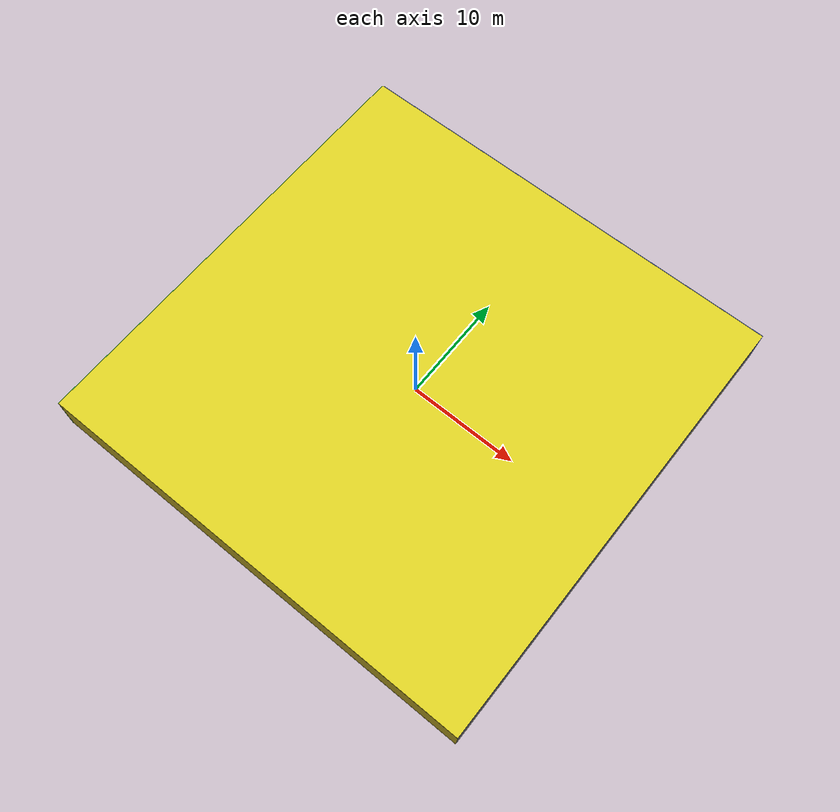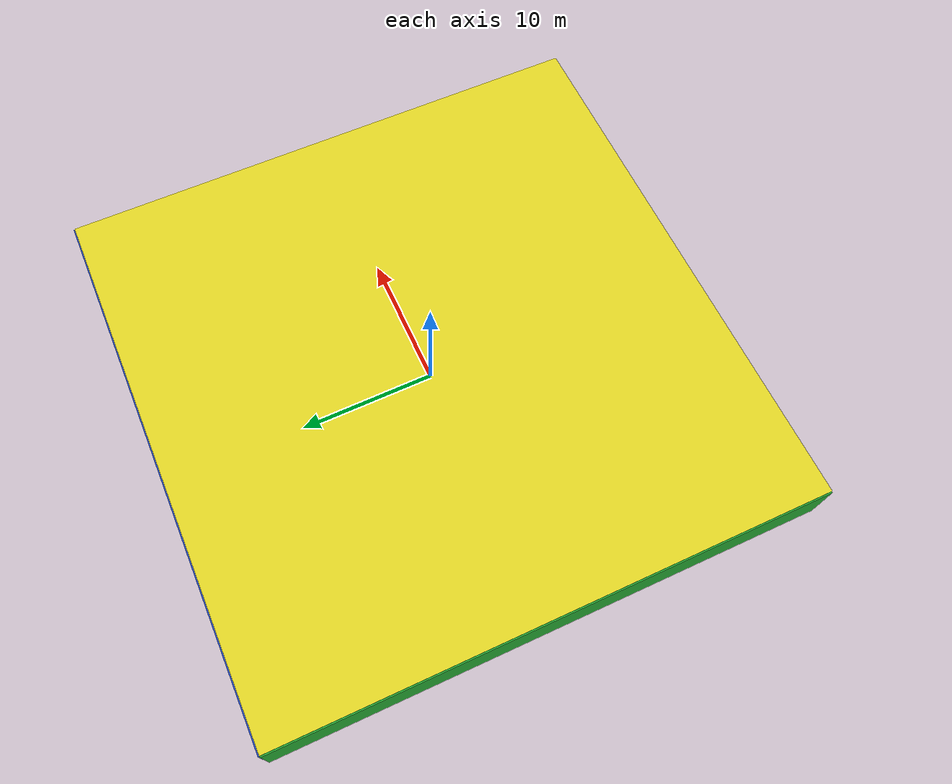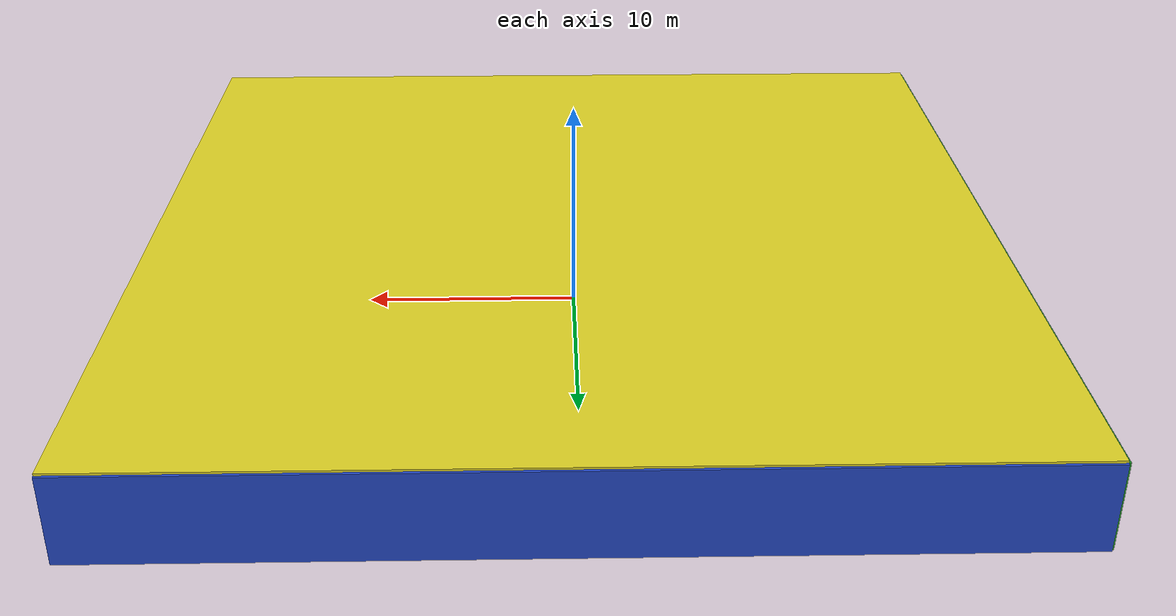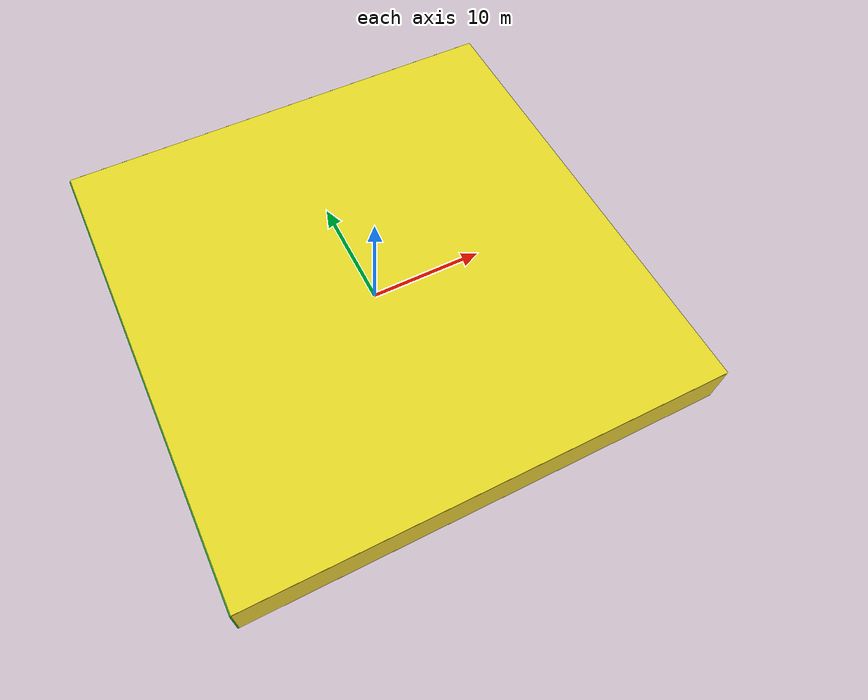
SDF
<sdf version="1.4">
 <world name="default">
  <physics type="ode">
   <max_step_size>0.001</max_step_size>
   <real_time_factor>1</real_time_factor>
   <real_time_update_rate>1000</real_time_update_rate>
   <gravity>0 0 -9.8</gravity>
  </physics>
  <scene><ambient>0.4 0.4 0.4 1</ambient><background>0.7 0.7 0.7 1</background><shadows>1</shadows></scene>
  <model name="Surrounding">
   <static>1</static>
   <link name="Ceiling">
    <collision name="Ceiling_Collision"><geometry><box><size>40 40 0.1</size></box></geometry></collision>
    <visual name="Ceiling_Visual">
     <geometry><box><size>40 40 0.1</size></box></geometry>
     <material>
      <script><uri>file://media/materials/scripts/gazebo.material</uri><name>Gazebo/YellowGlow</name></script>
     </material>
    </visual>
    <pose>0 0 4.05 0 0 0</pose>
   </link>
   <link name="Wall_South">
    <collision name="Wall_South_Collision">
     <geometry><box><size>40 0 4</size></box></geometry>
     <pose>0 0 2 0 -0 0</pose>
    </collision>
    <visual name="Wall_South_Visual">
     <pose>0 0 2 0 -0 0</pose>
     <geometry><box><size>40 0 4</size></box></geometry>
     <material>
      <script><uri>file://media/materials/scripts/gazebo.material</uri><name>Gazebo/ZincYellow</name></script>
     </material>
    </visual>
    <velocity_decay><linear>0</linear><angular>0</angular></velocity_decay>
    <pose>0 -20 0 0 -0 0</pose>
   </link>
   <link name="Wall_East">
    <collision name="Wall_21_Collision">
     <geometry><box><size>40 0 4</size></box></geometry>
     <pose>0 0 2 0 -0 0</pose>
    </collision>
    <visual name="Wall_21_Visual">
     <pose>0 0 2 0 -0 0</pose>
     <geometry><box><size>40 0 4</size></box></geometry>
     <material>
      <script><uri>file://media/materials/scripts/gazebo.material</uri><name>Gazebo/DarkGrey</name></script>
     </material>
    </visual>
    <velocity_decay><linear>0</linear><angular>0</angular></velocity_decay>
    <pose>20 0 0 0 -0 1.5708</pose>
   </link>
   <link name="Wall_North">
    <collision name="Wall_22_Collision">
     <geometry><box><size>40 0.2 4</size></box></geometry>
     <pose>0 0 2 0 -0 0</pose>
    </collision>
    <visual name="Wall_22_Visual">
     <pose>0 0 2 0 -0 0</pose>
     <geometry><box><size>40 0.2 4</size></box></geometry>
     <material>
      <script><uri>file://media/materials/scripts/gazebo.material</uri><name>Gazebo/BlueGlow</name></script>
     </material>
    </visual>
    <velocity_decay><linear>0</linear><angular>0</angular></velocity_decay>
    <pose>0 20 0 0 -0 0</pose>
   </link>
   <link name="Wall_West">
    <collision name="Wall_23_Collision">
     <geometry><box><size>40 0.2 4</size></box></geometry>
     <pose>0 0 2 0 -0 0</pose>
    </collision>
    <visual name="Wall_23_Visual">
     <pose>0 0 2 0 -0 0</pose>
     <geometry><box><size>40 0.2 4</size></box></geometry>
     <material>
      <script><uri>file://media/materials/scripts/gazebo.material</uri><name>Gazebo/GreenGlow</name></script>
     </material>
    </visual>
    <velocity_decay><linear>0</linear><angular>0</angular></velocity_decay>
    <pose>-20 0 0 0 0 -1.5708</pose>
   </link>
   <link name="Ground_link">
    <collision name="collision">
     <pose>0 0 .05 0 -0 0</pose>
     <geometry><box><size>40 40 0.1</size></box></geometry>
    </collision>
    <visual name="visual">
     <pose>0 0 .05 0 -0 0</pose>
     <geometry><box><size>40 40 0.1</size></box></geometry>
     <material>
      <script><uri>file://media/materials/scripts/gazebo.material</uri><name>Gazebo/YellowGlow</name></script>
     </material>
    </visual>
   </link>
   <static>1</static>
  </model>
  <spherical_coordinates>
   <surface_model>EARTH_WGS84</surface_model>
   <latitude_deg>0</latitude_deg>
   <longitude_deg>0</longitude_deg>
   <elevation>0</elevation>
   <heading_deg>0</heading_deg>
  </spherical_coordinates>
  <light name="lightball_0" type="diffuse">
   <diffuse>0.8 0.8 0.8 1</diffuse>
   <specular>0.2 0.2 0.2 1</specular>
   <attenuation>
    <range>100</range>
    <constant>0.7</constant>
    <linear>0.01</linear>
    <quadratic>0.001</quadratic>
   </attenuation>
   <direction>-0.5 0.1 -0.9</direction>
   <pose>12.1476703583 14.4825666915 1.30379471466 0 0 0</pose>
  </light>
  <light name="lightball_1" type="diffuse">
   <diffuse>0.8 0.8 0.8 1</diffuse>
   <specular>0.2 0.2 0.2 1</specular>
   <attenuation>
    <range>100</range>
    <constant>0.7</constant>
    <linear>0.01</linear>
    <quadratic>0.001</quadratic>
   </attenuation>
   <direction>-0.5 0.1 -0.9</direction>
   <pose>3.21428417011 -12.9584646202 3.38677828733 0 0 0</pose>
  </light>
  <light name="lightball_2" type="diffuse">
   <diffuse>0.8 0.8 0.8 1</diffuse>
   <specular>0.2 0.2 0.2 1</specular>
   <attenuation>
    <range>100</range>
    <constant>0.7</constant>
    <linear>0.01</linear>
    <quadratic>0.001</quadratic>
   </attenuation>
   <direction>-0.5 0.1 -0.9</direction>
   <pose>12.3342911174 -4.54670708271 3.7546564722 0 0 0</pose>
  </light>
  <light name="lightball_3" type="diffuse">
   <diffuse>0.8 0.8 0.8 1</diffuse>
   <specular>0.2 0.2 0.2 1</specular>
   <attenuation>
    <range>100</range>
    <constant>0.7</constant>
    <linear>0.01</linear>
    <quadratic>0.001</quadratic>
   </attenuation>
   <direction>-0.5 0.1 -0.9</direction>
   <pose>-16.5982507927 -12.5573444893 1.79399512181 0 0 0</pose>
  </light>
  <include>
   <uri>model://robocup_3Dsim_goal</uri>
   <pose>-18.3051609214 -15.436518607 0 0 0 0.765119504532</pose>
  </include>
  <include><uri>model://cabinet</uri><pose>-16.5934510304 -4.87461934594 0 0 0 0.518945035608</pose></include>
  <include>
   <uri>model://textured_shapes</uri>
   <pose>-12.1602452994 8.87419182408 0 0 0 2.97119483297</pose>
  </include>
  <include>
   <uri>model://textured_shapes</uri>
   <pose>-11.6927501568 12.5202887886 0 0 0 3.03623136496</pose>
  </include>
  <include>
   <uri>model://textured_shapes</uri>
   <pose>-7.75438598109 -17.6129971075 0 0 0 2.89081682073</pose>
  </include>
  <include><uri>model://cabinet</uri><pose>-8.23796891417 -8.02596245509 0 0 0 1.84238108824</pose></include>
  <include>
   <uri>model://textured_shapes</uri>
   <pose>-6.07770504671 15.8513591354 0 0 0 0.0463823281645</pose>
  </include>
  <include><uri>model://table</uri><pose>-1.35258804454 -14.8927221676 0 0 0 1.10186153087</pose></include>
  <include>
   <uri>model://textured_shapes</uri>
   <pose>-1.79743206714 12.4153898652 0 0 0 1.31655393262</pose>
  </include>
  <include>
   <uri>model://construction_cone</uri>
   <pose>-0.0182079541999 -6.15730384062 0 0 0 2.5616148919</pose>
  </include>
  <include><uri>model://cabinet</uri><pose>0.0362085158018 1.64885532503 0 0 0 0.199500290714</pose></include>
  <include><uri>model://table</uri><pose>-0.558280520798 6.61114777463 0 0 0 2.6313569775</pose></include>
  <include>
   <uri>model://robocup_3Dsim_goal</uri>
   <pose>1.62777253338 8.69844106434 0 0 0 2.02676370387</pose>
  </include>
  <include>
   <uri>model://construction_cone</uri>
   <pose>-0.560166245762 17.9359981416 0 0 0 1.38832290004</pose>
  </include>
  <include>
   <uri>model://robocup_3Dsim_goal</uri>
   <pose>4.3447049139 1.04719138934 0 0 0 2.6034691193</pose>
  </include>
  <include>
   <uri>model://textured_shapes</uri>
   <pose>4.32905651506 2.3099200272 0 0 0 0.860592001358</pose>
  </include>
  <include><uri>model://table</uri><pose>6.51418460945 17.6816556236 0 0 0 2.53699708943</pose></include>
  <include>
   <uri>model://robocup_3Dsim_goal</uri>
   <pose>13.6980085789 16.4628185063 0 0 0 0.261932063428</pose>
  </include>
 </world>
</sdf>

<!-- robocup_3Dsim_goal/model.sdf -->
<sdf version="1.5">
  <model name="robocup_3d_goal">
    <static>true</static>
    <link name="left_post">
      <pose>0 1.05 0.45 0 0 0</pose>
      <collision name="collision">
        <geometry>
          <cylinder>
            <radius>0.05</radius>
            <length>0.9</length>
          </cylinder>
        </geometry>
      </collision>
      <visual name="visual">
        <geometry>
          <cylinder>
            <radius>0.05</radius>
            <length>0.9</length>
          </cylinder>
        </geometry>
        <material>
          <script>
            <uri>file://media/materials/scripts/gazebo.material</uri>
            <name>Gazebo/ZincYellow</name>
          </script>
        </material>
      </visual>
    </link>
    <link name="left_support_horiz_lower">
      <pose>0.30 1.05 0.01 0 0 0</pose>
      <collision name="collision">
        <geometry>
          <box>
            <size>0.50 0.02 0.02</size>
          </box>
        </geometry>
      </collision>
      <visual name="visual">
        <geometry>
          <box>
            <size>0.50 0.02 0.02</size>
          </box>
        </geometry>
        <material>
          <script>
            <uri>file://media/materials/scripts/gazebo.material</uri>
            <name>Gazebo/White</name>
          </script>
        </material>
      </visual>
    </link>
    <link name="left_support_horiz_upper">
      <pose>0.30 1.05 0.79 0 0 0</pose>
      <collision name="collision">
        <geometry>
          <box>
            <size>0.50 0.02 0.02</size>
          </box>
        </geometry>
      </collision>
      <visual name="visual">
        <geometry>
          <box>
            <size>0.50 0.02 0.02</size>
          </box>
        </geometry>
        <material>
          <script>
            <uri>file://media/materials/scripts/gazebo.material</uri>
            <name>Gazebo/White</name>
          </script>
        </material>
      </visual>
    </link>
    <link name="left_support_vertical">
      <pose>0.56 1.05 0.4 0 1.5708 0</pose>
      <collision name="collision">
        <geometry>
          <box>
            <size>0.80 0.02 0.02</size>
          </box>
        </geometry>
      </collision>
      <visual name="visual">
        <geometry>
          <box>
            <size>0.80 0.02 0.02</size>
          </box>
        </geometry>
        <material>
          <script>
            <uri>file://media/materials/scripts/gazebo.material</uri>
            <name>Gazebo/White</name>
          </script>
        </material>
      </visual>
    </link>
    <link name="right_support_horiz_lower">
      <pose>0.30 -1.05 0.01 0 0 0</pose>
      <collision name="collision">
        <geometry>
          <box>
            <size>0.50 0.02 0.02</size>
          </box>
        </geometry>
      </collision>
      <visual name="visual">
        <geometry>
          <box>
            <size>0.50 0.02 0.02</size>
          </box>
        </geometry>
        <material>
          <script>
            <uri>file://media/materials/scripts/gazebo.material</uri>
            <name>Gazebo/White</name>
          </script>
        </material>
      </visual>
    </link>
    <link name="right_support_horiz_upper">
      <pose>0.30 -1.05 0.79 0 0 0</pose>
      <collision name="collision">
        <geometry>
          <box>
            <size>0.50 0.02 0.02</size>
          </box>
        </geometry>
      </collision>
      <visual name="visual">
        <geometry>
          <box>
            <size>0.50 0.02 0.02</size>
          </box>
        </geometry>
        <material>
          <script>
            <uri>file://media/materials/scripts/gazebo.material</uri>
            <name>Gazebo/White</name>
          </script>
        </material>
      </visual>
    </link>
    <link name="right_support_vertical">
      <pose>0.56 -1.05 0.4 0 1.5708 0</pose>
      <collision name="collision">
        <geometry>
          <box>
            <size>0.80 0.02 0.02</size>
          </box>
        </geometry>
      </collision>
      <visual name="visual">
        <geometry>
          <box>
            <size>0.80 0.02 0.02</size>
          </box>
        </geometry>
        <material>
          <script>
            <uri>file://media/materials/scripts/gazebo.material</uri>
            <name>Gazebo/White</name>
          </script>
        </material>
      </visual>
    </link>
    <link name="center_support_horiz_lower">
      <pose>0.56 0 0.01 0 1.5708 0</pose>
      <collision name="collision">
        <geometry>
          <box>
            <size>0.02 2.08 0.02</size>
          </box>
        </geometry>
      </collision>
      <visual name="visual">
        <geometry>
          <box>
            <size>0.02 2.08 0.02</size>
          </box>
        </geometry>
        <material>
          <script>
            <uri>file://media/materials/scripts/gazebo.material</uri>
            <name>Gazebo/White</name>
          </script>
        </material>
      </visual>
    </link>
    <link name="center_support_horiz_upper">
      <pose>0.56 0 0.79 0 1.5708 0</pose>
      <collision name="collision">
        <geometry>
          <box>
            <size>0.02 2.08 0.02</size>
          </box>
        </geometry>
      </collision>
      <visual name="visual">
        <geometry>
          <box>
            <size>0.02 2.08 0.02</size>
          </box>
        </geometry>
        <material>
          <script>
            <uri>file://media/materials/scripts/gazebo.material</uri>
            <name>Gazebo/White</name>
          </script>
        </material>
      </visual>
    </link>
    <link name="right_post">
      <pose>0 -1.05 0.45 0 0 0</pose>
      <collision name="collision">
        <geometry>
          <cylinder>
            <radius>0.05</radius>
            <length>0.9</length>
          </cylinder>
        </geometry>
      </collision>
      <visual name="visual">
        <geometry>
          <cylinder>
            <radius>0.05</radius>
            <length>0.9</length>
          </cylinder>
        </geometry>
        <material>
          <script>
            <uri>file://media/materials/scripts/gazebo.material</uri>
            <name>Gazebo/ZincYellow</name>
          </script>
        </material>
      </visual>
    </link>
    <link name="crossbar">
      <pose>0 0 0.85 1.57 1.57 0</pose>
      <collision name="collision">
        <geometry>
          <cylinder>
            <radius>0.05</radius>
            <length>2.0</length>
          </cylinder>
        </geometry>
      </collision>
      <visual name="visual">
        <geometry>
          <cylinder>
            <radius>0.05</radius>
            <length>2.0</length>
          </cylinder>
        </geometry>
        <material>
          <script>
            <uri>file://media/materials/scripts/gazebo.material</uri>
            <name>Gazebo/ZincYellow</name>
          </script>
        </material>
      </visual>
    </link>
    <link name="center_net">
      <pose>0.56 0 0.40 0 0 0</pose>
      <collision name="collision">
        <geometry>
          <box>
            <size>0.01 2.1 0.80</size>
          </box>
        </geometry>
      </collision>
      <visual name="visual">
        <geometry>
          <box>
            <size>0.01 2.1 0.80</size>
          </box>
        </geometry>
        <material>
          <script>
            <uri>model://../model_source/models/robocup09_spl_field/materials/scripts/</uri>
            <uri>model://../model_source/models/robocup09_spl_field/materials/textures/</uri>
            <name>RoboCup/Net</name>
          </script>
        </material>
      </visual>
    </link>
    <link name="left_net">
      <pose>0.30 1.05 0.40 0 0 0</pose>
      <collision name="collision">
        <geometry>
          <box>
            <size>0.50 0.01 0.76</size>
          </box>
        </geometry>
      </collision>
      <visual name="visual">
        <geometry>
          <box>
            <size>0.50 0.01 0.76</size>
          </box>
        </geometry>
        <material>
          <script>
            <uri>model://../model_source/models/robocup09_spl_field/materials/scripts/</uri>
            <uri>model://../model_source/models/robocup09_spl_field/materials/textures/</uri>
            <name>RoboCup/Net</name>
          </script>
        </material>
      </visual>
    </link>
    <link name="right_net">
      <pose>0.30 -1.05 0.40 0 0 0</pose>
      <collision name="collision">
        <geometry>
          <box>
            <size>0.50 0.01 0.76</size>
          </box>
        </geometry>
      </collision>
      <visual name="visual">
        <geometry>
          <box>
            <size>0.50 0.01 0.76</size>
          </box>
        </geometry>
        <material>
          <script>
            <uri>model://../model_source/models/robocup09_spl_field/materials/scripts/</uri>
            <uri>model://../model_source/models/robocup09_spl_field/materials/textures/</uri>
            <name>RoboCup/Net</name>
          </script>
        </material>
      </visual>
    </link>
  </model>
</sdf>

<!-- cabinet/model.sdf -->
<sdf version="1.5">
  <model name="cabinet">
    <static>true</static>
    <link name="cabinet_bottom_plate">
      <inertial>
        <pose>0 0 -1 0 0 0</pose>
        <inertia>
          <ixx>2.050000</ixx>
          <ixy>0</ixy>
          <ixz>0</ixz>
          <iyy>2.050000</iyy>
          <iyz>0</iyz>
          <izz>2.050000</izz>
        </inertia>
        <mass>25.000000</mass>
      </inertial>
      <collision name="cabinet_bottom_plate_geom">
        <pose>0 0 0.010000 0 0 0</pose>
        <geometry>
          <box>
            <size>0.450000 0.450000 0.020000</size>
          </box>
        </geometry>
      </collision>
      <visual name="cabinet_bottom_plate_geom_visual">
        <pose>0 0 0.010000 0 0 0</pose>
        <geometry>
          <box>
            <size>0.450000 0.450000 0.020000</size>
          </box>
        </geometry>
        <material>
          <script>
            <uri>model://media/materials/scripts/gazebo.material</uri>
            <name>Gazebo/Wood</name>
          </script>
        </material>
      </visual>
      <collision name="cabinet_bottom_plate_geom_cabinet_back_plate">
        <pose>0.235000 0 0.510000 0 0 0</pose>
        <geometry>
          <box>
            <size>0.020000 0.450000 1.020000</size>
          </box>
        </geometry>
      </collision>
      <visual name="cabinet_bottom_plate_geom_cabinet_back_plate_visual">
        <pose>0.235000 0 0.510000 0 0 0</pose>
        <geometry>
          <box>
            <size>0.020000 0.450000 1.020000</size>
          </box>
        </geometry>
        <material>
          <script>
            <uri>model://media/materials/scripts/gazebo.material</uri>
            <name>Gazebo/Wood</name>
          </script>
        </material>
      </visual>
      <collision name="cabinet_bottom_plate_geom_cabinet_left_plate">
        <pose>0 0.235000 0.510000 0 0 0</pose>
        <geometry>
          <box>
            <size>0.450000 0.020000 1.020000</size>
          </box>
        </geometry>
      </collision>
      <visual name="cabinet_bottom_plate_geom_cabinet_left_plate_visual">
        <pose>0 0.235000 0.510000 0 0 0</pose>
        <geometry>
          <box>
            <size>0.450000 0.020000 1.020000</size>
          </box>
        </geometry>
        <material>
          <script>
            <uri>model://media/materials/scripts/gazebo.material</uri>
            <name>Gazebo/Wood</name>
          </script>
        </material>
      </visual>
      <collision name="cabinet_bottom_plate_geom_cabinet_middle_plate">
        <pose>0 0 0.510000 0 0 0</pose>
        <geometry>
          <box>
            <size>0.450000 0.450000 0.020000</size>
          </box>
        </geometry>
      </collision>
      <visual name="cabinet_bottom_plate_geom_cabinet_middle_plate_visual">
        <pose>0 0 0.510000 0 0 0</pose>
        <geometry>
          <box>
            <size>0.450000 0.450000 0.020000</size>
          </box>
        </geometry>
        <material>
          <script>
            <uri>model://media/materials/scripts/gazebo.material</uri>
            <name>Gazebo/Wood</name>
          </script>
        </material>
      </visual>
      <collision name="cabinet_bottom_plate_geom_cabinet_right_plate">
        <pose>0 -0.235000 0.510000 0 0 0</pose>
        <geometry>
          <box>
            <size>0.450000 0.020000 1.020000</size>
          </box>
        </geometry>
      </collision>
      <visual name="cabinet_bottom_plate_geom_cabinet_right_plate_visual">
        <pose>0 -0.235000 0.510000 0 0 0</pose>
        <geometry>
          <box>
            <size>0.450000 0.020000 1.020000</size>
          </box>
        </geometry>
        <material>
          <script>
            <uri>model://media/materials/scripts/gazebo.material</uri>
            <name>Gazebo/Wood</name>
          </script>
        </material>
      </visual>
      <collision name="cabinet_bottom_plate_geom_cabinet_top_plate">
        <pose>0 0 1.010000 0 0 0</pose>
        <geometry>
          <box>
            <size>0.450000 0.450000 0.020000</size>
          </box>
        </geometry>
      </collision>
      <visual name="cabinet_bottom_plate_geom_cabinet_top_plate_visual">
        <pose>0 0 1.010000 0 0 0</pose>
        <geometry>
          <box>
            <size>0.450000 0.450000 0.020000</size>
          </box>
        </geometry>
        <material>
          <script>
            <uri>model://media/materials/scripts/gazebo.material</uri>
            <name>Gazebo/Wood</name>
          </script>
        </material>
      </visual>
    </link>
  </model>
</sdf>

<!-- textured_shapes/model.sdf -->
<sdf version="1.6">
  <model name="textured_shapes">
    <pose>0 0 0.5 0 0 0</pose>
    <link name="box">
      <pose>0 -1.5 0 0 0 0</pose>
      <collision name="collision">
        <geometry>
          <box>
            <size>1 1 1</size>
          </box>
        </geometry>
      </collision>
      <visual name="visual">
        <geometry>
          <box>
            <size>1 1 1</size>
          </box>
        </geometry>
        <material>
          <script>
            <uri>model://../model_source/models/textured_shapes/materials/scripts</uri>
            <uri>model://../model_source/models/textured_shapes/materials/textures</uri>
            <name>TexturedShape/Squares</name>
          </script>
        </material>
      </visual>
    </link>
    <link name="sphere">
      <collision name="collision">
        <geometry>
          <sphere>
            <radius>0.5</radius>
          </sphere>
        </geometry>
      </collision>
      <visual name="visual">
        <geometry>
          <sphere>
            <radius>0.5</radius>
          </sphere>
        </geometry>
        <material>
          <script>
            <uri>model://../model_source/models/textured_shapes/materials/scripts</uri>
            <uri>model://../model_source/models/textured_shapes/materials/textures</uri>
            <name>TexturedShape/Squares</name>
          </script>
        </material>
      </visual>
    </link>
    <link name="cylinder">
      <pose>0 1.5 0 0 0 0</pose>
      <collision name="collision">
        <geometry>
          <cylinder>
            <radius>0.5</radius>
            <length>1</length>
          </cylinder>
        </geometry>
      </collision>
      <visual name="visual">
        <geometry>
          <cylinder>
            <radius>0.5</radius>
            <length>1</length>
          </cylinder>
        </geometry>
        <material>
          <script>
            <uri>model://../model_source/models/textured_shapes/materials/scripts</uri>
            <uri>model://../model_source/models/textured_shapes/materials/textures</uri>
            <name>TexturedShape/Squares</name>
          </script>
        </material>
      </visual>
    </link>
  </model>
</sdf>

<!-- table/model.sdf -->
<sdf version="1.5">
  <model name="table">
    <static>true</static>
    <link name="link">
      <collision name="surface">
        <pose>0 0 1.0 0 0 0</pose>
        <geometry>
          <box>
            <size>1.5 0.8 0.03</size>
          </box>
        </geometry>
        <surface>
          <friction>
            <ode>
              <mu>0.6</mu>
              <mu2>0.6</mu2>
            </ode>
          </friction>
        </surface>
      </collision>
      <visual name="visual1">
        <pose>0 0 1.0 0 0 0</pose>
        <geometry>
          <box>
            <size>1.5 0.8 0.03</size>
          </box>
        </geometry>
        <material>
          <script>
            <uri>model://media/materials/scripts/gazebo.material</uri>
            <name>Gazebo/Wood</name>
          </script>
        </material>
      </visual>
      <collision name="front_left_leg">
        <pose>0.68 0.38 0.5 0 0 0</pose>
        <geometry>
          <cylinder>
            <radius>0.02</radius>
            <length>1.0</length>
          </cylinder>
        </geometry>
      </collision>
      <visual name="front_left_leg">
        <pose>0.68 0.38 0.5 0 0 0</pose>
        <geometry>
          <cylinder>
            <radius>0.02</radius>
            <length>1.0</length>
          </cylinder>
        </geometry>
        <material>
          <script>
            <uri>model://media/materials/scripts/gazebo.material</uri>
            <name>Gazebo/Grey</name>
          </script>
        </material>
      </visual>
      <collision name="front_right_leg">
        <pose>0.68 -0.38 0.5 0 0 0</pose>
        <geometry>
          <cylinder>
            <radius>0.02</radius>
            <length>1.0</length>
          </cylinder>
        </geometry>
      </collision>
      <visual name="front_right_leg">
        <pose>0.68 -0.38 0.5 0 0 0</pose>
        <geometry>
          <cylinder>
            <radius>0.02</radius>
            <length>1.0</length>
          </cylinder>
        </geometry>
        <material>
          <script>
            <uri>model://media/materials/scripts/gazebo.material</uri>
            <name>Gazebo/Grey</name>
          </script>
        </material>
      </visual>
      <collision name="back_right_leg">
        <pose>-0.68 -0.38 0.5 0 0 0</pose>
        <geometry>
          <cylinder>
            <radius>0.02</radius>
            <length>1.0</length>
          </cylinder>
        </geometry>
      </collision>
      <visual name="back_right_leg">
        <pose>-0.68 -0.38 0.5 0 0 0</pose>
        <geometry>
          <cylinder>
            <radius>0.02</radius>
            <length>1.0</length>
          </cylinder>
        </geometry>
        <material>
          <script>
            <uri>model://media/materials/scripts/gazebo.material</uri>
            <name>Gazebo/Grey</name>
          </script>
        </material>
      </visual>
      <collision name="back_left_leg">
        <pose>-0.68 0.38 0.5 0 0 0</pose>
        <geometry>
          <cylinder>
            <radius>0.02</radius>
            <length>1.0</length>
          </cylinder>
        </geometry>
      </collision>
      <visual name="back_left_leg">
        <pose>-0.68 0.38 0.5 0 0 0</pose>
        <geometry>
          <cylinder>
            <radius>0.02</radius>
            <length>1.0</length>
          </cylinder>
        </geometry>
        <material>
          <script>
            <uri>model://media/materials/scripts/gazebo.material</uri>
            <name>Gazebo/Grey</name>
          </script>
        </material>
      </visual>
    </link>
  </model>
</sdf>

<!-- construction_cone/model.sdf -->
<sdf version="1.5">
  <model name="Construction Cone">
    <link name="link">
      <collision name="collision">
        <geometry>
          <mesh>
            <scale>10 10 10</scale>
            <uri>file://isr-testbed/construction_cone/meshes/construction_cone.dae</uri>
          </mesh>
        </geometry>
      </collision>
      <visual name="visual">
        <geometry>
          <mesh>
            <scale>10 10 10</scale>
            <uri>file://isr-testbed/construction_cone/meshes/construction_cone.dae</uri>
          </mesh>
        </geometry>
      </visual>
    </link>
  </model>
</sdf>
